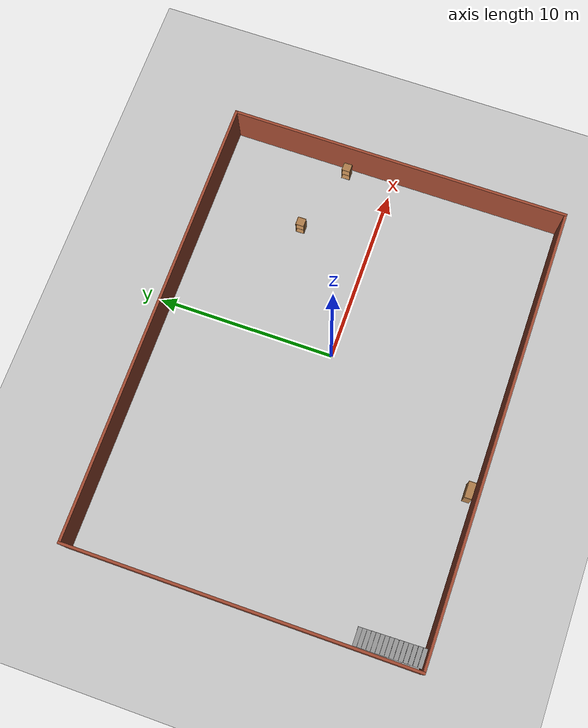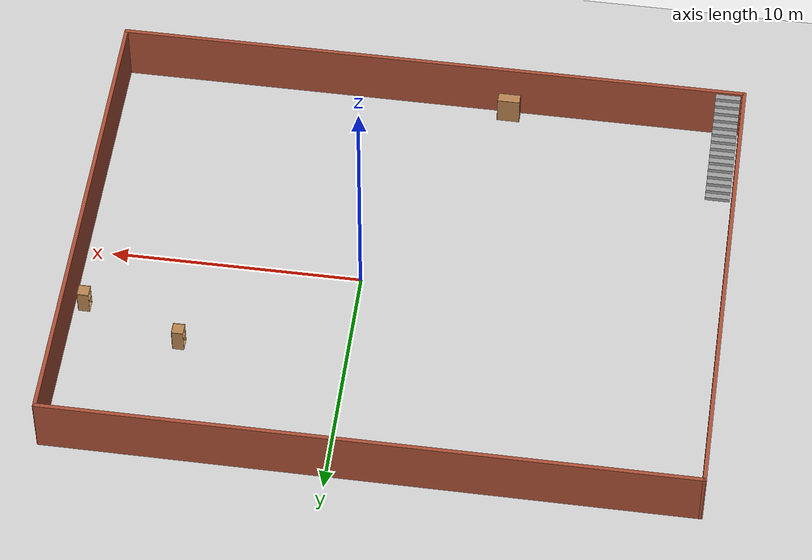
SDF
<sdf version="1.7">
 <world name="default">
  <light name="sun" type="directional">
   <pose>0 0 10 0 -0 0</pose>
   <diffuse>0.8 0.8 0.8 1</diffuse>
   <specular>0.2 0.2 0.2 1</specular>
   <attenuation>
    <range>1000</range>
    <constant>0.9</constant>
    <linear>0.01</linear>
    <quadratic>0.001</quadratic>
   </attenuation>
   <direction>-0.5 0.1 -0.9</direction>
   <spot><inner_angle>0</inner_angle><outer_angle>0</outer_angle><falloff>0</falloff></spot>
  </light>
  <model name="ground_plane">
   <static>1</static>
   <link name="link">
    <collision name="collision">
     <geometry><plane><normal>0 0 1</normal><size>100 100</size></plane></geometry>
     <surface>
      <contact><collide_bitmask>65535</collide_bitmask></contact>
      <friction><ode><mu>100</mu><mu2>50</mu2></ode></friction>
     </surface>
    </collision>
    <visual name="visual">
     <cast_shadows>0</cast_shadows>
     <geometry><plane><normal>0 0 1</normal><size>100 100</size></plane></geometry>
     <material>
      <script><uri>file://media/materials/scripts/gazebo.material</uri><name>Gazebo/Grey</name></script>
     </material>
    </visual>
   </link>
  </model>
  <gravity>0 0 -9.8</gravity>
  <magnetic_field>6e-06 2.3e-05 -4.2e-05</magnetic_field>
  <atmosphere type="adiabatic"/>
  <physics type="ode">
   <max_step_size>0.001</max_step_size>
   <real_time_factor>1</real_time_factor>
   <real_time_update_rate>1000</real_time_update_rate>
  </physics>
  <scene><ambient>0.4 0.4 0.4 1</ambient><background>0.7 0.7 0.7 1</background><shadows>1</shadows></scene>
  <spherical_coordinates>
   <surface_model>EARTH_WGS84</surface_model>
   <latitude_deg>0</latitude_deg>
   <longitude_deg>0</longitude_deg>
   <elevation>0</elevation>
   <heading_deg>0</heading_deg>
  </spherical_coordinates>
  <model name="Untitled">
   <pose>-1.60708 -0.083978 0 0 -0 0</pose>
   <link name="Stairs_0">
    <visual name="Stairs_0_Visual_0">
     <pose>-12.0367 -6.00858 0.083333 0 -0 0</pose>
     <geometry><box><size>1 0.233333 0.166667</size></box></geometry>
     <material>
      <script><uri>file://media/materials/scripts/gazebo.material</uri><name>Gazebo/Grey</name></script>
      <ambient>1 1 1 1</ambient>
     </material>
     <meta><layer>0</layer></meta>
    </visual>
    <collision name="Stairs_0_Collision_0">
     <geometry><box><size>1 0.233333 0.166667</size></box></geometry>
     <pose>-12.0367 -6.00858 0.083333 0 -0 0</pose>
    </collision>
    <visual name="Stairs_0_Visual_1">
     <pose>-12.0367 -6.24191 0.25 0 -0 0</pose>
     <geometry><box><size>1 0.233333 0.166667</size></box></geometry>
     <material>
      <script><uri>file://media/materials/scripts/gazebo.material</uri><name>Gazebo/Grey</name></script>
      <ambient>1 1 1 1</ambient>
     </material>
     <meta><layer>0</layer></meta>
    </visual>
    <collision name="Stairs_0_Collision_1">
     <geometry><box><size>1 0.233333 0.166667</size></box></geometry>
     <pose>-12.0367 -6.24191 0.25 0 -0 0</pose>
    </collision>
    <visual name="Stairs_0_Visual_2">
     <pose>-12.0367 -6.47524 0.416667 0 -0 0</pose>
     <geometry><box><size>1 0.233333 0.166667</size></box></geometry>
     <material>
      <script><uri>file://media/materials/scripts/gazebo.material</uri><name>Gazebo/Grey</name></script>
      <ambient>1 1 1 1</ambient>
     </material>
     <meta><layer>0</layer></meta>
    </visual>
    <collision name="Stairs_0_Collision_2">
     <geometry><box><size>1 0.233333 0.166667</size></box></geometry>
     <pose>-12.0367 -6.47524 0.416667 0 -0 0</pose>
    </collision>
    <visual name="Stairs_0_Visual_3">
     <pose>-12.0367 -6.70858 0.583333 0 -0 0</pose>
     <geometry><box><size>1 0.233333 0.166667</size></box></geometry>
     <material>
      <script><uri>file://media/materials/scripts/gazebo.material</uri><name>Gazebo/Grey</name></script>
      <ambient>1 1 1 1</ambient>
     </material>
     <meta><layer>0</layer></meta>
    </visual>
    <collision name="Stairs_0_Collision_3">
     <geometry><box><size>1 0.233333 0.166667</size></box></geometry>
     <pose>-12.0367 -6.70858 0.583333 0 -0 0</pose>
    </collision>
    <visual name="Stairs_0_Visual_4">
     <pose>-12.0367 -6.94191 0.75 0 -0 0</pose>
     <geometry><box><size>1 0.233333 0.166667</size></box></geometry>
     <material>
      <script><uri>file://media/materials/scripts/gazebo.material</uri><name>Gazebo/Grey</name></script>
      <ambient>1 1 1 1</ambient>
     </material>
     <meta><layer>0</layer></meta>
    </visual>
    <collision name="Stairs_0_Collision_4">
     <geometry><box><size>1 0.233333 0.166667</size></box></geometry>
     <pose>-12.0367 -6.94191 0.75 0 -0 0</pose>
    </collision>
    <visual name="Stairs_0_Visual_5">
     <pose>-12.0367 -7.17524 0.916667 0 -0 0</pose>
     <geometry><box><size>1 0.233333 0.166667</size></box></geometry>
     <material>
      <script><uri>file://media/materials/scripts/gazebo.material</uri><name>Gazebo/Grey</name></script>
      <ambient>1 1 1 1</ambient>
     </material>
     <meta><layer>0</layer></meta>
    </visual>
    <collision name="Stairs_0_Collision_5">
     <geometry><box><size>1 0.233333 0.166667</size></box></geometry>
     <pose>-12.0367 -7.17524 0.916667 0 -0 0</pose>
    </collision>
    <visual name="Stairs_0_Visual_6">
     <pose>-12.0367 -7.40858 1.08333 0 -0 0</pose>
     <geometry><box><size>1 0.233333 0.166667</size></box></geometry>
     <material>
      <script><uri>file://media/materials/scripts/gazebo.material</uri><name>Gazebo/Grey</name></script>
      <ambient>1 1 1 1</ambient>
     </material>
     <meta><layer>0</layer></meta>
    </visual>
    <collision name="Stairs_0_Collision_6">
     <geometry><box><size>1 0.233333 0.166667</size></box></geometry>
     <pose>-12.0367 -7.40858 1.08333 0 -0 0</pose>
    </collision>
    <visual name="Stairs_0_Visual_7">
     <pose>-12.0367 -7.64191 1.25 0 -0 0</pose>
     <geometry><box><size>1 0.233333 0.166667</size></box></geometry>
     <material>
      <script><uri>file://media/materials/scripts/gazebo.material</uri><name>Gazebo/Grey</name></script>
      <ambient>1 1 1 1</ambient>
     </material>
     <meta><layer>0</layer></meta>
    </visual>
    <collision name="Stairs_0_Collision_7">
     <geometry><box><size>1 0.233333 0.166667</size></box></geometry>
     <pose>-12.0367 -7.64191 1.25 0 -0 0</pose>
    </collision>
    <visual name="Stairs_0_Visual_8">
     <pose>-12.0367 -7.87524 1.41667 0 -0 0</pose>
     <geometry><box><size>1 0.233333 0.166667</size></box></geometry>
     <material>
      <script><uri>file://media/materials/scripts/gazebo.material</uri><name>Gazebo/Grey</name></script>
      <ambient>1 1 1 1</ambient>
     </material>
     <meta><layer>0</layer></meta>
    </visual>
    <collision name="Stairs_0_Collision_8">
     <geometry><box><size>1 0.233333 0.166667</size></box></geometry>
     <pose>-12.0367 -7.87524 1.41667 0 -0 0</pose>
    </collision>
    <visual name="Stairs_0_Visual_9">
     <pose>-12.0367 -8.10858 1.58333 0 -0 0</pose>
     <geometry><box><size>1 0.233333 0.166667</size></box></geometry>
     <material>
      <script><uri>file://media/materials/scripts/gazebo.material</uri><name>Gazebo/Grey</name></script>
      <ambient>1 1 1 1</ambient>
     </material>
     <meta><layer>0</layer></meta>
    </visual>
    <collision name="Stairs_0_Collision_9">
     <geometry><box><size>1 0.233333 0.166667</size></box></geometry>
     <pose>-12.0367 -8.10858 1.58333 0 -0 0</pose>
    </collision>
    <visual name="Stairs_0_Visual_10">
     <pose>-12.0367 -8.34191 1.75 0 -0 0</pose>
     <geometry><box><size>1 0.233333 0.166667</size></box></geometry>
     <material>
      <script><uri>file://media/materials/scripts/gazebo.material</uri><name>Gazebo/Grey</name></script>
      <ambient>1 1 1 1</ambient>
     </material>
     <meta><layer>0</layer></meta>
    </visual>
    <collision name="Stairs_0_Collision_10">
     <geometry><box><size>1 0.233333 0.166667</size></box></geometry>
     <pose>-12.0367 -8.34191 1.75 0 -0 0</pose>
    </collision>
    <visual name="Stairs_0_Visual_11">
     <pose>-12.0367 -8.57524 1.91667 0 -0 0</pose>
     <geometry><box><size>1 0.233333 0.166667</size></box></geometry>
     <material>
      <script><uri>file://media/materials/scripts/gazebo.material</uri><name>Gazebo/Grey</name></script>
      <ambient>1 1 1 1</ambient>
     </material>
     <meta><layer>0</layer></meta>
    </visual>
    <collision name="Stairs_0_Collision_11">
     <geometry><box><size>1 0.233333 0.166667</size></box></geometry>
     <pose>-12.0367 -8.57524 1.91667 0 -0 0</pose>
    </collision>
    <visual name="Stairs_0_Visual_12">
     <pose>-12.0367 -8.80858 2.08333 0 -0 0</pose>
     <geometry><box><size>1 0.233333 0.166667</size></box></geometry>
     <material>
      <script><uri>file://media/materials/scripts/gazebo.material</uri><name>Gazebo/Grey</name></script>
      <ambient>1 1 1 1</ambient>
     </material>
     <meta><layer>0</layer></meta>
    </visual>
    <collision name="Stairs_0_Collision_12">
     <geometry><box><size>1 0.233333 0.166667</size></box></geometry>
     <pose>-12.0367 -8.80858 2.08333 0 -0 0</pose>
    </collision>
    <visual name="Stairs_0_Visual_13">
     <pose>-12.0367 -9.04191 2.25 0 -0 0</pose>
     <geometry><box><size>1 0.233333 0.166667</size></box></geometry>
     <material>
      <script><uri>file://media/materials/scripts/gazebo.material</uri><name>Gazebo/Grey</name></script>
      <ambient>1 1 1 1</ambient>
     </material>
     <meta><layer>0</layer></meta>
    </visual>
    <collision name="Stairs_0_Collision_13">
     <geometry><box><size>1 0.233333 0.166667</size></box></geometry>
     <pose>-12.0367 -9.04191 2.25 0 -0 0</pose>
    </collision>
    <visual name="Stairs_0_Visual_14">
     <pose>-12.0367 -9.27524 2.41667 0 -0 0</pose>
     <geometry><box><size>1 0.233333 0.166667</size></box></geometry>
     <material>
      <script><uri>file://media/materials/scripts/gazebo.material</uri><name>Gazebo/Grey</name></script>
      <ambient>1 1 1 1</ambient>
     </material>
     <meta><layer>0</layer></meta>
    </visual>
    <collision name="Stairs_0_Collision_14">
     <geometry><box><size>1 0.233333 0.166667</size></box></geometry>
     <pose>-12.0367 -9.27524 2.41667 0 -0 0</pose>
    </collision>
   </link>
   <link name="Wall_0">
    <collision name="Wall_0_Collision">
     <geometry><box><size>25.5 0.15 2.5</size></box></geometry>
     <pose>0 0 1.25 0 -0 0</pose>
    </collision>
    <visual name="Wall_0_Visual">
     <pose>0 0 1.25 0 -0 0</pose>
     <geometry><box><size>25.5 0.15 2.5</size></box></geometry>
     <material>
      <script><uri>file://media/materials/scripts/gazebo.material</uri><name>Gazebo/Bricks</name></script>
      <ambient>1 0.764706 0.305882 1</ambient>
     </material>
     <meta><layer>0</layer></meta>
    </visual>
    <pose>0 -9.55 0 0 -0 3.14159</pose>
   </link>
   <link name="Wall_2">
    <collision name="Wall_2_Collision">
     <geometry><box><size>19.25 0.15 2.5</size></box></geometry>
     <pose>0 0 1.25 0 -0 0</pose>
    </collision>
    <visual name="Wall_2_Visual">
     <pose>0 0 1.25 0 -0 0</pose>
     <geometry><box><size>19.25 0.15 2.5</size></box></geometry>
     <material>
      <script><uri>file://media/materials/scripts/gazebo.material</uri><name>Gazebo/Bricks</name></script>
      <ambient>1 0.764706 0.305882 1</ambient>
     </material>
     <meta><layer>0</layer></meta>
    </visual>
    <pose>-12.675 -0 0 0 -0 1.5708</pose>
   </link>
   <link name="Wall_3">
    <collision name="Wall_3_Collision">
     <geometry><box><size>25.5 0.15 2.5</size></box></geometry>
     <pose>0 0 1.25 0 -0 0</pose>
    </collision>
    <visual name="Wall_3_Visual">
     <pose>0 0 1.25 0 -0 0</pose>
     <geometry><box><size>25.5 0.15 2.5</size></box></geometry>
     <material>
      <script><uri>file://media/materials/scripts/gazebo.material</uri><name>Gazebo/Bricks</name></script>
      <ambient>1 1 1 1</ambient>
     </material>
     <meta><layer>0</layer></meta>
    </visual>
    <pose>0 9.55 0 0 -0 0</pose>
   </link>
   <link name="Wall_4">
    <collision name="Wall_4_Collision">
     <geometry><box><size>19.25 0.15 2.5</size></box></geometry>
     <pose>0 0 1.25 0 -0 0</pose>
    </collision>
    <visual name="Wall_4_Visual">
     <pose>0 0 1.25 0 -0 0</pose>
     <geometry><box><size>19.25 0.15 2.5</size></box></geometry>
     <material>
      <script><uri>file://media/materials/scripts/gazebo.material</uri><name>Gazebo/Bricks</name></script>
      <ambient>1 1 1 1</ambient>
     </material>
     <meta><layer>0</layer></meta>
    </visual>
    <pose>12.675 -0 0 0 -0 -1.5708</pose>
   </link>
   <static>1</static>
  </model>
  <model name="bookshelf">
   <static>1</static>
   <link name="link">
    <inertial><mass>1</mass></inertial>
    <collision name="back">
     <pose>0 0.005 0.6 0 -0 0</pose>
     <geometry><box><size>0.9 0.01 1.2</size></box></geometry>
    </collision>
    <visual name="visual1">
     <pose>0 0.005 0.6 0 -0 0</pose>
     <geometry><box><size>0.9 0.01 1.2</size></box></geometry>
     <material>
      <script><uri>file://media/materials/scripts/gazebo.material</uri><name>Gazebo/Wood</name></script>
     </material>
    </visual>
    <collision name="left_side">
     <pose>0.45 -0.195 0.6 0 -0 0</pose>
     <geometry><box><size>0.02 0.4 1.2</size></box></geometry>
    </collision>
    <visual name="visual2">
     <pose>0.45 -0.195 0.6 0 -0 0</pose>
     <geometry><box><size>0.02 0.4 1.2</size></box></geometry>
     <material>
      <script><uri>file://media/materials/scripts/gazebo.material</uri><name>Gazebo/Wood</name></script>
     </material>
    </visual>
    <collision name="right_side">
     <pose>-0.45 -0.195 0.6 0 -0 0</pose>
     <geometry><box><size>0.02 0.4 1.2</size></box></geometry>
    </collision>
    <visual name="visual3">
     <pose>-0.45 -0.195 0.6 0 -0 0</pose>
     <geometry><box><size>0.02 0.4 1.2</size></box></geometry>
     <material>
      <script><uri>file://media/materials/scripts/gazebo.material</uri><name>Gazebo/Wood</name></script>
     </material>
    </visual>
    <collision name="bottom">
     <pose>0 -0.195 0.03 0 -0 0</pose>
     <geometry><box><size>0.88 0.4 0.06</size></box></geometry>
    </collision>
    <visual name="visual4">
     <pose>0 -0.195 0.03 0 -0 0</pose>
     <geometry><box><size>0.88 0.4 0.06</size></box></geometry>
     <material>
      <script><uri>file://media/materials/scripts/gazebo.material</uri><name>Gazebo/Wood</name></script>
     </material>
    </visual>
    <collision name="top">
     <pose>0 -0.195 1.19 0 -0 0</pose>
     <geometry><box><size>0.88 0.4 0.02</size></box></geometry>
    </collision>
    <visual name="visual5">
     <pose>0 -0.195 1.19 0 -0 0</pose>
     <geometry><box><size>0.88 0.4 0.02</size></box></geometry>
     <material>
      <script><uri>file://media/materials/scripts/gazebo.material</uri><name>Gazebo/Wood</name></script>
     </material>
    </visual>
    <collision name="low_shelf">
     <pose>0 -0.195 0.43 0 -0 0</pose>
     <geometry><box><size>0.88 0.4 0.02</size></box></geometry>
    </collision>
    <visual name="visual6">
     <pose>0 -0.195 0.43 0 -0 0</pose>
     <geometry><box><size>0.88 0.4 0.02</size></box></geometry>
     <material>
      <script><uri>file://media/materials/scripts/gazebo.material</uri><name>Gazebo/Wood</name></script>
     </material>
    </visual>
    <collision name="high_shelf">
     <pose>0 -0.195 0.8 0 -0 0</pose>
     <geometry><box><size>0.88 0.4 0.02</size></box></geometry>
    </collision>
    <visual name="visual7">
     <pose>0 -0.195 0.8 0 -0 0</pose>
     <geometry><box><size>0.88 0.4 0.02</size></box></geometry>
     <material>
      <script><uri>file://media/materials/scripts/gazebo.material</uri><name>Gazebo/Wood</name></script>
     </material>
    </visual>
   </link>
   <pose>-4.79091 -9.05778 0 0 -0 0</pose>
  </model>
  <model name="cabinet">
   <static>1</static>
   <link name="cabinet_bottom_plate">
    <inertial>
     <pose>0 0 -1 0 -0 0</pose>
     <inertia><ixx>2.05</ixx><ixy>0</ixy><ixz>0</ixz><iyy>2.05</iyy><iyz>0</iyz><izz>2.05</izz></inertia>
     <mass>25</mass>
    </inertial>
    <collision name="cabinet_bottom_plate_geom">
     <pose>0 0 0.01 0 -0 0</pose>
     <geometry><box><size>0.45 0.45 0.02</size></box></geometry>
    </collision>
    <visual name="cabinet_bottom_plate_geom_visual">
     <pose>0 0 0.01 0 -0 0</pose>
     <geometry><box><size>0.45 0.45 0.02</size></box></geometry>
     <material>
      <script><uri>file://media/materials/scripts/gazebo.material</uri><name>Gazebo/Wood</name></script>
     </material>
    </visual>
    <collision name="cabinet_bottom_plate_geom_cabinet_back_plate">
     <pose>0.235 0 0.51 0 -0 0</pose>
     <geometry><box><size>0.02 0.45 1.02</size></box></geometry>
    </collision>
    <visual name="cabinet_bottom_plate_geom_cabinet_back_plate_visual">
     <pose>0.235 0 0.51 0 -0 0</pose>
     <geometry><box><size>0.02 0.45 1.02</size></box></geometry>
     <material>
      <script><uri>file://media/materials/scripts/gazebo.material</uri><name>Gazebo/Wood</name></script>
     </material>
    </visual>
    <collision name="cabinet_bottom_plate_geom_cabinet_left_plate">
     <pose>0 0.235 0.51 0 -0 0</pose>
     <geometry><box><size>0.45 0.02 1.02</size></box></geometry>
    </collision>
    <visual name="cabinet_bottom_plate_geom_cabinet_left_plate_visual">
     <pose>0 0.235 0.51 0 -0 0</pose>
     <geometry><box><size>0.45 0.02 1.02</size></box></geometry>
     <material>
      <script><uri>file://media/materials/scripts/gazebo.material</uri><name>Gazebo/Wood</name></script>
     </material>
    </visual>
    <collision name="cabinet_bottom_plate_geom_cabinet_middle_plate">
     <pose>0 0 0.51 0 -0 0</pose>
     <geometry><box><size>0.45 0.45 0.02</size></box></geometry>
    </collision>
    <visual name="cabinet_bottom_plate_geom_cabinet_middle_plate_visual">
     <pose>0 0 0.51 0 -0 0</pose>
     <geometry><box><size>0.45 0.45 0.02</size></box></geometry>
     <material>
      <script><uri>file://media/materials/scripts/gazebo.material</uri><name>Gazebo/Wood</name></script>
     </material>
    </visual>
    <collision name="cabinet_bottom_plate_geom_cabinet_right_plate">
     <pose>0 -0.235 0.51 0 -0 0</pose>
     <geometry><box><size>0.45 0.02 1.02</size></box></geometry>
    </collision>
    <visual name="cabinet_bottom_plate_geom_cabinet_right_plate_visual">
     <pose>0 -0.235 0.51 0 -0 0</pose>
     <geometry><box><size>0.45 0.02 1.02</size></box></geometry>
     <material>
      <script><uri>file://media/materials/scripts/gazebo.material</uri><name>Gazebo/Wood</name></script>
     </material>
    </visual>
    <collision name="cabinet_bottom_plate_geom_cabinet_top_plate">
     <pose>0 0 1.01 0 -0 0</pose>
     <geometry><box><size>0.45 0.45 0.02</size></box></geometry>
    </collision>
    <visual name="cabinet_bottom_plate_geom_cabinet_top_plate_visual">
     <pose>0 0 1.01 0 -0 0</pose>
     <geometry><box><size>0.45 0.45 0.02</size></box></geometry>
     <material>
      <script><uri>file://media/materials/scripts/gazebo.material</uri><name>Gazebo/Wood</name></script>
     </material>
    </visual>
   </link>
   <pose>10.5762 2.72804 0 0 -0 0</pose>
  </model>
  <model name="cabinet_0">
   <static>1</static>
   <link name="cabinet_bottom_plate">
    <inertial>
     <pose>0 0 -1 0 -0 0</pose>
     <inertia><ixx>2.05</ixx><ixy>0</ixy><ixz>0</ixz><iyy>2.05</iyy><iyz>0</iyz><izz>2.05</izz></inertia>
     <mass>25</mass>
    </inertial>
    <collision name="cabinet_bottom_plate_geom">
     <pose>0 0 0.01 0 -0 0</pose>
     <geometry><box><size>0.45 0.45 0.02</size></box></geometry>
    </collision>
    <visual name="cabinet_bottom_plate_geom_visual">
     <pose>0 0 0.01 0 -0 0</pose>
     <geometry><box><size>0.45 0.45 0.02</size></box></geometry>
     <material>
      <script><uri>file://media/materials/scripts/gazebo.material</uri><name>Gazebo/Wood</name></script>
     </material>
    </visual>
    <collision name="cabinet_bottom_plate_geom_cabinet_back_plate">
     <pose>0.235 0 0.51 0 -0 0</pose>
     <geometry><box><size>0.02 0.45 1.02</size></box></geometry>
    </collision>
    <visual name="cabinet_bottom_plate_geom_cabinet_back_plate_visual">
     <pose>0.235 0 0.51 0 -0 0</pose>
     <geometry><box><size>0.02 0.45 1.02</size></box></geometry>
     <material>
      <script><uri>file://media/materials/scripts/gazebo.material</uri><name>Gazebo/Wood</name></script>
     </material>
    </visual>
    <collision name="cabinet_bottom_plate_geom_cabinet_left_plate">
     <pose>0 0.235 0.51 0 -0 0</pose>
     <geometry><box><size>0.45 0.02 1.02</size></box></geometry>
    </collision>
    <visual name="cabinet_bottom_plate_geom_cabinet_left_plate_visual">
     <pose>0 0.235 0.51 0 -0 0</pose>
     <geometry><box><size>0.45 0.02 1.02</size></box></geometry>
     <material>
      <script><uri>file://media/materials/scripts/gazebo.material</uri><name>Gazebo/Wood</name></script>
     </material>
    </visual>
    <collision name="cabinet_bottom_plate_geom_cabinet_middle_plate">
     <pose>0 0 0.51 0 -0 0</pose>
     <geometry><box><size>0.45 0.45 0.02</size></box></geometry>
    </collision>
    <visual name="cabinet_bottom_plate_geom_cabinet_middle_plate_visual">
     <pose>0 0 0.51 0 -0 0</pose>
     <geometry><box><size>0.45 0.45 0.02</size></box></geometry>
     <material>
      <script><uri>file://media/materials/scripts/gazebo.material</uri><name>Gazebo/Wood</name></script>
     </material>
    </visual>
    <collision name="cabinet_bottom_plate_geom_cabinet_right_plate">
     <pose>0 -0.235 0.51 0 -0 0</pose>
     <geometry><box><size>0.45 0.02 1.02</size></box></geometry>
    </collision>
    <visual name="cabinet_bottom_plate_geom_cabinet_right_plate_visual">
     <pose>0 -0.235 0.51 0 -0 0</pose>
     <geometry><box><size>0.45 0.02 1.02</size></box></geometry>
     <material>
      <script><uri>file://media/materials/scripts/gazebo.material</uri><name>Gazebo/Wood</name></script>
     </material>
    </visual>
    <collision name="cabinet_bottom_plate_geom_cabinet_top_plate">
     <pose>0 0 1.01 0 -0 0</pose>
     <geometry><box><size>0.45 0.45 0.02</size></box></geometry>
    </collision>
    <visual name="cabinet_bottom_plate_geom_cabinet_top_plate_visual">
     <pose>0 0 1.01 0 -0 0</pose>
     <geometry><box><size>0.45 0.45 0.02</size></box></geometry>
     <material>
      <script><uri>file://media/materials/scripts/gazebo.material</uri><name>Gazebo/Wood</name></script>
     </material>
    </visual>
   </link>
   <pose>6.57949 4.08478 0 0 -0 0</pose>
  </model>
 </world>
</sdf>
